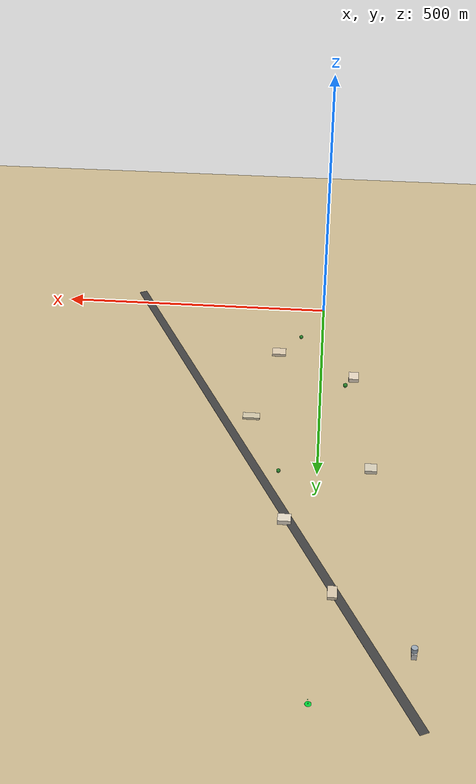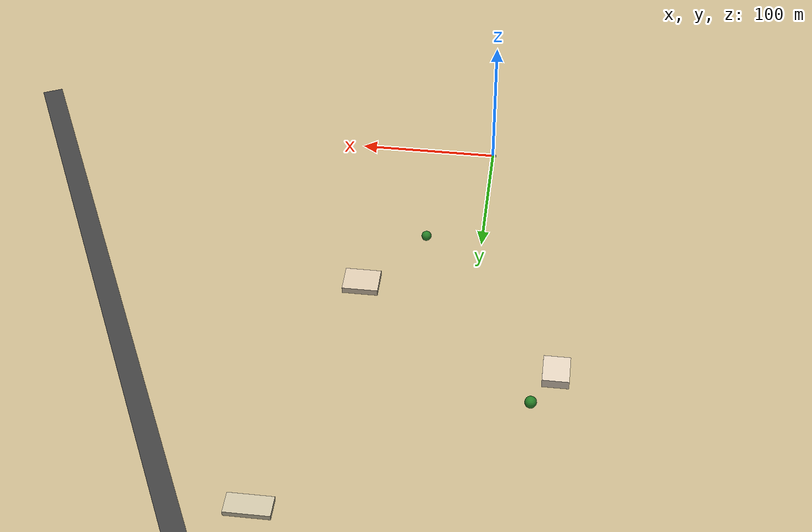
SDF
<sdf version="1.9">
 <world name="injambakkam_fyp">
  <physics name="1ms" type="ignore">
   <max_step_size>0.001</max_step_size>
   <real_time_factor>1.0</real_time_factor>
  </physics>
  <plugin filename="gz-sim-physics-system" name="gz::sim::systems::Physics"/>
  <plugin filename="gz-sim-sensors-system" name="gz::sim::systems::Sensors">
   <render_engine>ogre2</render_engine>
  </plugin>
  <plugin filename="gz-sim-user-commands-system" name="gz::sim::systems::UserCommands"/>
  <plugin filename="gz-sim-scene-broadcaster-system" name="gz::sim::systems::SceneBroadcaster"/>
  <plugin filename="gz-sim-imu-system" name="gz::sim::systems::Imu"/>
  <plugin filename="gz-sim-navsat-system" name="gz::sim::systems::NavSat"/>
  <plugin filename="gz-sim-wind-effects-system" name="gz::sim::systems::WindEffects">
   <horizontal_mean_vel>-2.83 2.83 0.0</horizontal_mean_vel>
   <horizontal_var_time>3.0</horizontal_var_time>
   <vertical_var_time>3.0</vertical_var_time>
   <horizontal_gust_vel_stddev>1.5</horizontal_gust_vel_stddev>
  </plugin>
  <scene>
   <ambient>0.9 0.88 0.82 1.0</ambient>
   <background>0.6 0.78 0.95 1.0</background>
   <sky>
    <clouds>
     <speed>5</speed>
     <direction>2.35619</direction>
     <humidity>0.8</humidity>
     <mean_size>0.5</mean_size>
     <ambient>0.9 0.9 0.9 1</ambient>
    </clouds>
    <time>12</time>
    <sunrise>6</sunrise>
    <sunset>19</sunset>
   </sky>
   <shadows>true</shadows>
   <fog>
    <color>0.8 0.85 0.9 1.0</color>
    <type>linear</type>
    <start>800</start>
    <end>2000</end>
    <density>0.005</density>
   </fog>
  </scene>
  <spherical_coordinates>
   <latitude_deg>12.9516</latitude_deg>
   <longitude_deg>80.2573</longitude_deg>
   <elevation>6.0</elevation>
   <heading_deg>0</heading_deg>
   <surface_model>EARTH_WGS84</surface_model>
  </spherical_coordinates>
  <light type="directional" name="sun">
   <pose>0 0 1000 0 0 0</pose>
   <direction>-0.4 0.35 -0.85</direction>
   <diffuse>1.0 0.97 0.9 1</diffuse>
   <specular>0.5 0.48 0.44 1</specular>
   <attenuation>
    <range>2000</range>
    <constant>0.9</constant>
    <linear>0.01</linear>
    <quadratic>0.001</quadratic>
   </attenuation>
  </light>
  <model name="ground_plane">
   <static>true</static>
   <link name="link">
    <collision name="collision">
     <geometry><plane><normal>0 0 1</normal><size>5000 5000</size></plane></geometry>
     <surface><friction><ode><mu>100</mu><mu2>50</mu2></ode></friction></surface>
    </collision>
    <visual name="visual">
     <geometry><plane><normal>0 0 1</normal><size>5000 5000</size></plane></geometry>
     <material>
      <ambient>0.78 0.71 0.55 1</ambient>
      <diffuse>0.78 0.71 0.55 1</diffuse>
      <specular>0.1 0.1 0.1 1</specular>
     </material>
    </visual>
   </link>
  </model>
  <model name="origin_axes">
   <static>1</static>
   <link name="link">
    <visual name="x_axis">
     <cast_shadows>0</cast_shadows>
     <pose>10 0 0.05 0 0 0</pose>
     <geometry><box><size>20 0.05 0.05</size></box></geometry>
     <material><ambient>1 0 0 1</ambient><diffuse>1 0 0 1</diffuse><emissive>0.8 0 0 1</emissive></material>
    </visual>
    <visual name="y_axis">
     <cast_shadows>0</cast_shadows>
     <pose>0 10 0.05 0 0 0</pose>
     <geometry><box><size>0.05 20 0.05</size></box></geometry>
     <material><ambient>0 1 0 1</ambient><diffuse>0 1 0 1</diffuse><emissive>0 0.8 0 1</emissive></material>
    </visual>
    <visual name="z_axis">
     <cast_shadows>0</cast_shadows>
     <pose>0 0 5.05 0 0 0</pose>
     <geometry><box><size>0.05 0.05 10</size></box></geometry>
     <material><ambient>0 0 1 1</ambient><diffuse>0 0 1 1</diffuse><emissive>0 0 0.8 1</emissive></material>
    </visual>
    <sensor name="navsat_sensor" type="navsat"><always_on>1</always_on><update_rate>50</update_rate></sensor>
   </link>
  </model>
  <model name="launch_pad">
   <static>true</static>
   <pose>0 0 0.01 0 0 0</pose>
   <link name="link">
    <visual name="pad_base">
     <geometry><cylinder><radius>2.5</radius><length>0.05</length></cylinder></geometry>
     <material>
      <ambient>0.15 0.15 0.15 1</ambient>
      <diffuse>0.2 0.2 0.2 1</diffuse>
      <emissive>0.05 0.05 0.05 1</emissive>
     </material>
    </visual>
    <visual name="pad_h_bar_x">
     <pose>0 0 0.06 0 0 0</pose>
     <geometry><box><size>4.5 0.3 0.05</size></box></geometry>
     <material><ambient>1 0.9 0 1</ambient><diffuse>1 0.9 0 1</diffuse><emissive>0.5 0.45 0 1</emissive></material>
    </visual>
    <visual name="pad_h_bar_y">
     <pose>0 0 0.06 0 0 1.5708</pose>
     <geometry><box><size>4.5 0.3 0.05</size></box></geometry>
     <material><ambient>1 0.9 0 1</ambient><diffuse>1 0.9 0 1</diffuse><emissive>0.5 0.45 0 1</emissive></material>
    </visual>
   </link>
  </model>
  <model name="goal_marker">
   <static>true</static>
   <pose>0 1000 0.01 0 0 0</pose>
   <link name="link">
    <visual name="goal_disc">
     <geometry><cylinder><radius>5.0</radius><length>0.1</length></cylinder></geometry>
     <material>
      <ambient>0 0.8 0.2 0.9</ambient>
      <diffuse>0 0.8 0.2 0.9</diffuse>
      <emissive>0 0.4 0.1 1</emissive>
     </material>
    </visual>
    <visual name="goal_pole">
     <pose>0 0 5 0 0 0</pose>
     <geometry><cylinder><radius>0.1</radius><length>10</length></cylinder></geometry>
     <material>
      <ambient>0 0.8 0.2 1</ambient>
      <diffuse>0 0.8 0.2 1</diffuse>
      <emissive>0 0.6 0.15 1</emissive>
     </material>
    </visual>
    <visual name="goal_flag">
     <pose>0.6 0 9.5 0 0 0</pose>
     <geometry><box><size>1.2 0.05 0.8</size></box></geometry>
     <material>
      <ambient>0 0.8 0.2 1</ambient>
      <diffuse>0 0.8 0.2 1</diffuse>
      <emissive>0 0.6 0.15 1</emissive>
     </material>
    </visual>
   </link>
  </model>
  <model name="building_01">
   <static>true</static>
   <pose>80 150 0 0 0 0</pose>
   <link name="link">
    <visual name="vis">
     <geometry><box><size>25 20 8</size></box></geometry>
     <material><ambient>0.85 0.78 0.68 1</ambient><diffuse>0.85 0.78 0.68 1</diffuse></material>
    </visual>
    <collision name="col"><geometry><box><size>25 20 8</size></box></geometry></collision>
   </link>
  </model>
  <model name="building_02">
   <static>true</static>
   <pose>-60 220 0 0 0 0</pose>
   <link name="link">
    <visual name="vis">
     <geometry><box><size>18 22 12</size></box></geometry>
     <material><ambient>0.88 0.82 0.74 1</ambient><diffuse>0.88 0.82 0.74 1</diffuse></material>
    </visual>
    <collision name="col"><geometry><box><size>18 22 12</size></box></geometry></collision>
   </link>
  </model>
  <model name="building_03">
   <static>true</static>
   <pose>120 350 0 0 0 0</pose>
   <link name="link">
    <visual name="vis">
     <geometry><box><size>30 15 6</size></box></geometry>
     <material><ambient>0.80 0.76 0.65 1</ambient><diffuse>0.80 0.76 0.65 1</diffuse></material>
    </visual>
    <collision name="col"><geometry><box><size>30 15 6</size></box></geometry></collision>
   </link>
  </model>
  <model name="building_04">
   <static>true</static>
   <pose>-90 480 0 0 0 0</pose>
   <link name="link">
    <visual name="vis">
     <geometry><box><size>20 20 10</size></box></geometry>
     <material><ambient>0.82 0.79 0.71 1</ambient><diffuse>0.82 0.79 0.71 1</diffuse></material>
    </visual>
    <collision name="col"><geometry><box><size>20 20 10</size></box></geometry></collision>
   </link>
  </model>
  <model name="building_05">
   <static>true</static>
   <pose>50 620 0 0 0 0</pose>
   <link name="link">
    <visual name="vis">
     <geometry><box><size>22 18 14</size></box></geometry>
     <material><ambient>0.87 0.83 0.76 1</ambient><diffuse>0.87 0.83 0.76 1</diffuse></material>
    </visual>
    <collision name="col"><geometry><box><size>22 18 14</size></box></geometry></collision>
   </link>
  </model>
  <model name="building_06">
   <static>true</static>
   <pose>-30 780 0 0 0 0</pose>
   <link name="link">
    <visual name="vis">
     <geometry><box><size>15 25 9</size></box></geometry>
     <material><ambient>0.83 0.77 0.67 1</ambient><diffuse>0.83 0.77 0.67 1</diffuse></material>
    </visual>
    <collision name="col"><geometry><box><size>15 25 9</size></box></geometry></collision>
   </link>
  </model>
  <model name="water_tower">
   <static>true</static>
   <pose>-150 900 0 0 0 0</pose>
   <link name="link">
    <visual name="vis_legs">
     <geometry><box><size>8 8 18</size></box></geometry>
     <material><ambient>0.7 0.7 0.7 1</ambient><diffuse>0.75 0.75 0.75 1</diffuse></material>
    </visual>
    <visual name="vis_tank">
     <pose>0 0 16 0 0 0</pose>
     <geometry><cylinder><radius>5</radius><length>8</length></cylinder></geometry>
     <material><ambient>0.6 0.65 0.7 1</ambient><diffuse>0.6 0.65 0.7 1</diffuse></material>
    </visual>
    <collision name="col"><geometry><box><size>8 8 18</size></box></geometry></collision>
   </link>
  </model>
  <model name="tree_row_01">
   <static>true</static>
   <pose>40 100 0 0 0 0</pose>
   <link name="link">
    <visual name="trunk">
     <geometry><cylinder><radius>0.3</radius><length>5</length></cylinder></geometry>
     <material><ambient>0.4 0.25 0.1 1</ambient><diffuse>0.4 0.25 0.1 1</diffuse></material>
    </visual>
    <visual name="canopy">
     <pose>0 0 4 0 0 0</pose>
     <geometry><sphere><radius>3.5</radius></sphere></geometry>
     <material><ambient>0.15 0.5 0.15 1</ambient><diffuse>0.15 0.5 0.15 1</diffuse></material>
    </visual>
   </link>
  </model>
  <model name="tree_row_02">
   <static>true</static>
   <pose>-45 250 0 0 0 0</pose>
   <link name="link">
    <visual name="trunk">
     <geometry><cylinder><radius>0.3</radius><length>6</length></cylinder></geometry>
     <material><ambient>0.4 0.25 0.1 1</ambient><diffuse>0.4 0.25 0.1 1</diffuse></material>
    </visual>
    <visual name="canopy">
     <pose>0 0 5 0 0 0</pose>
     <geometry><sphere><radius>4.0</radius></sphere></geometry>
     <material><ambient>0.15 0.5 0.15 1</ambient><diffuse>0.15 0.5 0.15 1</diffuse></material>
    </visual>
   </link>
  </model>
  <model name="tree_row_03">
   <static>true</static>
   <pose>65 500 0 0 0 0</pose>
   <link name="link">
    <visual name="trunk">
     <geometry><cylinder><radius>0.3</radius><length>5</length></cylinder></geometry>
     <material><ambient>0.4 0.25 0.1 1</ambient><diffuse>0.4 0.25 0.1 1</diffuse></material>
    </visual>
    <visual name="canopy">
     <pose>0 0 4 0 0 0</pose>
     <geometry><sphere><radius>3.5</radius></sphere></geometry>
     <material><ambient>0.15 0.5 0.15 1</ambient><diffuse>0.15 0.5 0.15 1</diffuse></material>
    </visual>
   </link>
  </model>
  <model name="ecr_road_segment">
   <static>true</static>
   <pose>100 500 0.005 0 0 0.45</pose>
   <link name="link">
    <visual name="road_vis">
     <geometry><box><size>15 1200 0.01</size></box></geometry>
     <material><ambient>0.22 0.22 0.22 1</ambient><diffuse>0.25 0.25 0.25 1</diffuse></material>
    </visual>
   </link>
  </model>
 </world>
</sdf>
